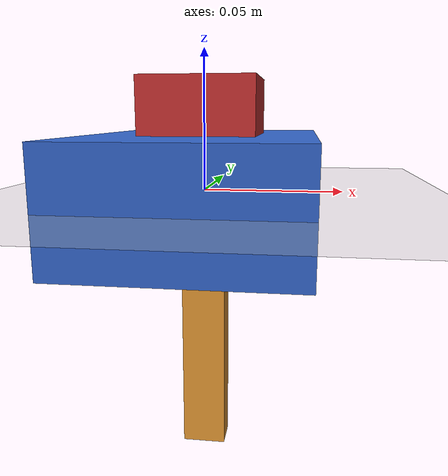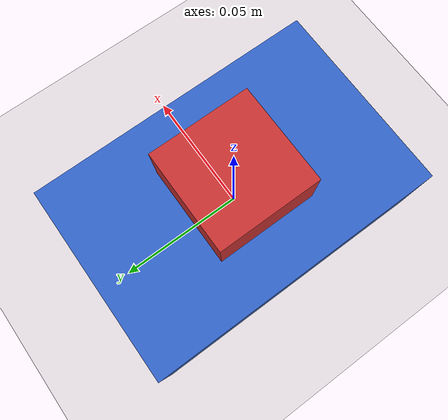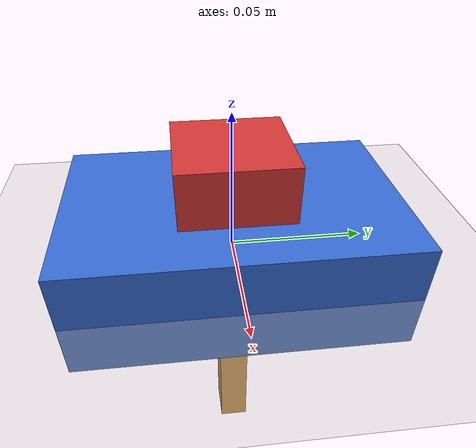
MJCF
<mujoco model="gripper_cube">
  <option timestep="0.002" gravity="0 0 -9.81" integrator="implicitfast"/>

  <default>
    <joint damping="1" armature="0.01"/>
    <geom friction="1.0 0.05 0.001" solref="0.01 1" solimp="0.95 0.99 0.001"/>
    <position kp="80" ctrlrange="-1 1"/>
  </default>

  <worldbody>
    <light name="top" pos="0 0 1.2" dir="0 0 -1" diffuse="0.8 0.8 0.8"/>
    <!-- fixed camera for the step-through viewer; tracks the cube as it is lifted -->
    <camera name="closeup" pos="0.45 -0.45 0.40" mode="targetbody" target="cube"/>
    <!-- table surface at z=0 -->
    <geom name="table" type="plane" size="0.5 0.5 0.01" rgba="0.7 0.7 0.7 1"/>

    <!-- floating gripper: 3 slide DOFs for the palm + 2 finger DOFs -->
    <body name="palm" pos="0 0 0">
      <joint name="slide_x" type="slide" axis="1 0 0" range="-0.30 0.30"/>
      <joint name="slide_y" type="slide" axis="0 1 0" range="-0.30 0.30"/>
      <joint name="slide_z" type="slide" axis="0 0 1" range="0.06 0.45"/>
      <geom name="palm" type="box" size="0.04 0.06 0.02" rgba="0.2 0.4 0.8 1" mass="0.5"/>
      <site name="grasp_center" pos="0 0 -0.07" size="0.005" rgba="1 0 0 0.4"/>

      <!-- left finger: qpos high = open (sits at +y), qpos 0 = closed (y=0) -->
      <body name="left_finger" pos="0 0 -0.02">
        <joint name="left_finger" type="slide" axis="0 1 0" range="0 0.05"/>
        <geom name="left_finger" type="box" size="0.008 0.006 0.04" pos="0 0 -0.04"
              rgba="0.9 0.6 0.2 1" mass="0.05"/>
      </body>
      <!-- right finger: qpos high = open (sits at -y) -->
      <body name="right_finger" pos="0 0 -0.02">
        <joint name="right_finger" type="slide" axis="0 -1 0" range="0 0.05"/>
        <geom name="right_finger" type="box" size="0.008 0.006 0.04" pos="0 0 -0.04"
              rgba="0.9 0.6 0.2 1" mass="0.05"/>
      </body>
    </body>

    <!-- the object to manipulate: a free cube resting on the table -->
    <body name="cube" pos="0.0 0.0 0.02">
      <freejoint name="cube"/>
      <geom name="cube" type="box" size="0.02 0.02 0.02" rgba="0.8 0.2 0.2 1" mass="0.05"/>
    </body>
  </worldbody>

  <actuator>
    <position name="slide_x" joint="slide_x" ctrlrange="-0.30 0.30"/>
    <position name="slide_y" joint="slide_y" ctrlrange="-0.30 0.30"/>
    <position name="slide_z" joint="slide_z" ctrlrange="0.06 0.45" kp="200"/>
    <position name="left_finger" joint="left_finger" ctrlrange="0 0.05" kp="60"/>
    <position name="right_finger" joint="right_finger" ctrlrange="0 0.05" kp="60"/>
  </actuator>

  <keyframe>
    <!-- home: gripper up and open, cube centred on the table -->
    <key name="home"
         qpos="0 0 0.30 0.05 0.05  0 0 0.02 1 0 0 0"
         ctrl="0 0 0.30 0.05 0.05"/>
  </keyframe>
</mujoco>
